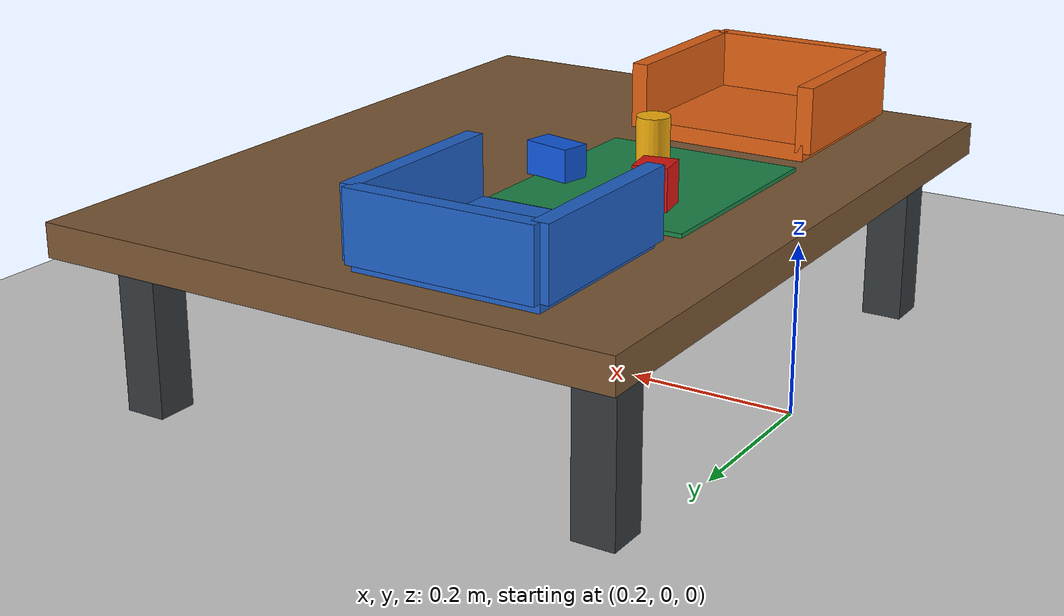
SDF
<?xml version="1.0" ?>
<sdf version="1.6">
  <world name="pick_and_place">
    <gravity>0 0 -9.80665</gravity>

    <physics name="ode_physics" type="ode">
      <max_step_size>0.001</max_step_size>
      <real_time_factor>1.0</real_time_factor>
      <real_time_update_rate>1000</real_time_update_rate>
      <ode>
        <solver>
          <type>quick</type>
          <iters>100</iters>
          <sor>1.3</sor>
        </solver>
        <constraints>
          <cfm>0.0</cfm>
          <erp>0.2</erp>
          <contact_max_correcting_vel>0.1</contact_max_correcting_vel>
          <contact_surface_layer>0.001</contact_surface_layer>
        </constraints>
      </ode>
    </physics>

    <include>
      <uri>model://ground_plane</uri>
    </include>
    <include>
      <uri>model://sun</uri>
    </include>

    <scene>
      <ambient>0.45 0.45 0.45 1</ambient>
      <background>0.72 0.78 0.82 1</background>
      <shadows>true</shadows>
    </scene>

    <gui fullscreen="0">
      <camera name="overview_camera">
        <pose>1.45 -1.35 1.05 0 0.45 2.35</pose>
        <view_controller>orbit</view_controller>
      </camera>
    </gui>

    <model name="workbench">
      <static>true</static>
      <link name="bench">
        <collision name="top_collision">
          <pose>0.52 0 0.215 0 0 0</pose>
          <geometry>
            <box><size>0.70 0.90 0.04</size></box>
          </geometry>
          <surface>
            <friction>
              <ode><mu>1.4</mu><mu2>1.4</mu2></ode>
            </friction>
          </surface>
        </collision>
        <visual name="top_visual">
          <pose>0.52 0 0.215 0 0 0</pose>
          <geometry>
            <box><size>0.70 0.90 0.04</size></box>
          </geometry>
          <material>
            <ambient>0.25 0.19 0.12 1</ambient>
            <diffuse>0.48 0.34 0.20 1</diffuse>
          </material>
        </visual>

        <collision name="front_left_leg_collision">
          <pose>0.23 0.36 0.10 0 0 0</pose>
          <geometry><box><size>0.05 0.05 0.20</size></box></geometry>
        </collision>
        <visual name="front_left_leg_visual">
          <pose>0.23 0.36 0.10 0 0 0</pose>
          <geometry><box><size>0.05 0.05 0.20</size></box></geometry>
          <material><diffuse>0.20 0.22 0.24 1</diffuse></material>
        </visual>

        <collision name="front_right_leg_collision">
          <pose>0.23 -0.36 0.10 0 0 0</pose>
          <geometry><box><size>0.05 0.05 0.20</size></box></geometry>
        </collision>
        <visual name="front_right_leg_visual">
          <pose>0.23 -0.36 0.10 0 0 0</pose>
          <geometry><box><size>0.05 0.05 0.20</size></box></geometry>
          <material><diffuse>0.20 0.22 0.24 1</diffuse></material>
        </visual>

        <collision name="rear_left_leg_collision">
          <pose>0.81 0.36 0.10 0 0 0</pose>
          <geometry><box><size>0.05 0.05 0.20</size></box></geometry>
        </collision>
        <visual name="rear_left_leg_visual">
          <pose>0.81 0.36 0.10 0 0 0</pose>
          <geometry><box><size>0.05 0.05 0.20</size></box></geometry>
          <material><diffuse>0.20 0.22 0.24 1</diffuse></material>
        </visual>

        <collision name="rear_right_leg_collision">
          <pose>0.81 -0.36 0.10 0 0 0</pose>
          <geometry><box><size>0.05 0.05 0.20</size></box></geometry>
        </collision>
        <visual name="rear_right_leg_visual">
          <pose>0.81 -0.36 0.10 0 0 0</pose>
          <geometry><box><size>0.05 0.05 0.20</size></box></geometry>
          <material><diffuse>0.20 0.22 0.24 1</diffuse></material>
        </visual>
      </link>
    </model>

    <model name="pickup_zone">
      <static>true</static>
      <link name="marker">
        <visual name="marker_visual">
          <pose>0.39 0 0.2375 0 0 0</pose>
          <geometry><box><size>0.24 0.28 0.005</size></box></geometry>
          <material>
            <ambient>0.08 0.30 0.18 1</ambient>
            <diffuse>0.10 0.52 0.28 1</diffuse>
          </material>
        </visual>
      </link>
    </model>

    <model name="place_tray">
      <static>true</static>
      <link name="tray">
        <collision name="base_collision">
          <pose>0.39 0.29 0.245 0 0 0</pose>
          <geometry><box><size>0.22 0.22 0.02</size></box></geometry>
        </collision>
        <visual name="base_visual">
          <pose>0.39 0.29 0.245 0 0 0</pose>
          <geometry><box><size>0.22 0.22 0.02</size></box></geometry>
          <material><diffuse>0.12 0.38 0.78 1</diffuse></material>
        </visual>

        <collision name="wall_x_min_collision">
          <pose>0.28 0.29 0.285 0 0 0</pose>
          <geometry><box><size>0.02 0.22 0.08</size></box></geometry>
        </collision>
        <visual name="wall_x_min_visual">
          <pose>0.28 0.29 0.285 0 0 0</pose>
          <geometry><box><size>0.02 0.22 0.08</size></box></geometry>
          <material><diffuse>0.12 0.38 0.78 1</diffuse></material>
        </visual>

        <collision name="wall_x_max_collision">
          <pose>0.50 0.29 0.285 0 0 0</pose>
          <geometry><box><size>0.02 0.22 0.08</size></box></geometry>
        </collision>
        <visual name="wall_x_max_visual">
          <pose>0.50 0.29 0.285 0 0 0</pose>
          <geometry><box><size>0.02 0.22 0.08</size></box></geometry>
          <material><diffuse>0.12 0.38 0.78 1</diffuse></material>
        </visual>

        <collision name="wall_y_max_collision">
          <pose>0.39 0.40 0.285 0 0 0</pose>
          <geometry><box><size>0.22 0.02 0.08</size></box></geometry>
        </collision>
        <visual name="wall_y_max_visual">
          <pose>0.39 0.40 0.285 0 0 0</pose>
          <geometry><box><size>0.22 0.02 0.08</size></box></geometry>
          <material><diffuse>0.12 0.38 0.78 1</diffuse></material>
        </visual>
      </link>
    </model>

    <model name="reject_tray">
      <static>true</static>
      <link name="tray">
        <collision name="base_collision">
          <pose>0.39 -0.29 0.245 0 0 0</pose>
          <geometry><box><size>0.22 0.22 0.02</size></box></geometry>
        </collision>
        <visual name="base_visual">
          <pose>0.39 -0.29 0.245 0 0 0</pose>
          <geometry><box><size>0.22 0.22 0.02</size></box></geometry>
          <material><diffuse>0.88 0.38 0.08 1</diffuse></material>
        </visual>

        <collision name="wall_x_min_collision">
          <pose>0.28 -0.29 0.285 0 0 0</pose>
          <geometry><box><size>0.02 0.22 0.08</size></box></geometry>
        </collision>
        <visual name="wall_x_min_visual">
          <pose>0.28 -0.29 0.285 0 0 0</pose>
          <geometry><box><size>0.02 0.22 0.08</size></box></geometry>
          <material><diffuse>0.88 0.38 0.08 1</diffuse></material>
        </visual>

        <collision name="wall_x_max_collision">
          <pose>0.50 -0.29 0.285 0 0 0</pose>
          <geometry><box><size>0.02 0.22 0.08</size></box></geometry>
        </collision>
        <visual name="wall_x_max_visual">
          <pose>0.50 -0.29 0.285 0 0 0</pose>
          <geometry><box><size>0.02 0.22 0.08</size></box></geometry>
          <material><diffuse>0.88 0.38 0.08 1</diffuse></material>
        </visual>

        <collision name="wall_y_min_collision">
          <pose>0.39 -0.40 0.285 0 0 0</pose>
          <geometry><box><size>0.22 0.02 0.08</size></box></geometry>
        </collision>
        <visual name="wall_y_min_visual">
          <pose>0.39 -0.40 0.285 0 0 0</pose>
          <geometry><box><size>0.22 0.02 0.08</size></box></geometry>
          <material><diffuse>0.88 0.38 0.08 1</diffuse></material>
        </visual>
      </link>
    </model>

    <model name="pick_cube_red">
      <pose>0.34 0.07 0.264 0 0 0.18</pose>
      <link name="body">
        <inertial>
          <mass>0.08</mass>
          <inertia>
            <ixx>0.0000213</ixx><ixy>0</ixy><ixz>0</ixz>
            <iyy>0.0000213</iyy><iyz>0</iyz><izz>0.0000213</izz>
          </inertia>
        </inertial>
        <collision name="collision">
          <geometry><box><size>0.04 0.04 0.05</size></box></geometry>
          <surface>
            <friction><ode><mu>1.5</mu><mu2>1.5</mu2></ode></friction>
            <contact><ode><kp>1000000</kp><kd>10</kd><max_vel>0.1</max_vel><min_depth>0.001</min_depth></ode></contact>
          </surface>
        </collision>
        <visual name="visual">
          <geometry><box><size>0.04 0.04 0.05</size></box></geometry>
          <material><ambient>0.50 0.04 0.04 1</ambient><diffuse>0.85 0.08 0.06 1</diffuse></material>
        </visual>
        <velocity_decay><linear>0.05</linear><angular>0.05</angular></velocity_decay>
      </link>
    </model>

    <model name="pick_cylinder_yellow">
      <pose>0.42 -0.07 0.267 0 0 0</pose>
      <link name="body">
        <inertial>
          <mass>0.06</mass>
          <inertia>
            <ixx>0.0000245</ixx><ixy>0</ixy><ixz>0</ixz>
            <iyy>0.0000245</iyy><iyz>0</iyz><izz>0.0000120</izz>
          </inertia>
        </inertial>
        <collision name="collision">
          <geometry><cylinder><radius>0.02</radius><length>0.06</length></cylinder></geometry>
          <surface>
            <friction><ode><mu>1.5</mu><mu2>1.5</mu2></ode></friction>
            <contact><ode><kp>1000000</kp><kd>10</kd><max_vel>0.1</max_vel><min_depth>0.001</min_depth></ode></contact>
          </surface>
        </collision>
        <visual name="visual">
          <geometry><cylinder><radius>0.02</radius><length>0.06</length></cylinder></geometry>
          <material><ambient>0.55 0.38 0.02 1</ambient><diffuse>0.95 0.68 0.05 1</diffuse></material>
        </visual>
        <velocity_decay><linear>0.05</linear><angular>0.05</angular></velocity_decay>
      </link>
    </model>

    <model name="pick_block_blue">
      <pose>0.49 0.03 0.259 0 0 -0.22</pose>
      <link name="body">
        <inertial>
          <mass>0.07</mass>
          <inertia>
            <ixx>0.0000120</ixx><ixy>0</ixy><ixz>0</ixz>
            <iyy>0.0000280</iyy><iyz>0</iyz><izz>0.0000310</izz>
          </inertia>
        </inertial>
        <collision name="collision">
          <geometry><box><size>0.06 0.035 0.04</size></box></geometry>
          <surface>
            <friction><ode><mu>1.5</mu><mu2>1.5</mu2></ode></friction>
            <contact><ode><kp>1000000</kp><kd>10</kd><max_vel>0.1</max_vel><min_depth>0.001</min_depth></ode></contact>
          </surface>
        </collision>
        <visual name="visual">
          <geometry><box><size>0.06 0.035 0.04</size></box></geometry>
          <material><ambient>0.03 0.18 0.48 1</ambient><diffuse>0.06 0.34 0.86 1</diffuse></material>
        </visual>
        <velocity_decay><linear>0.05</linear><angular>0.05</angular></velocity_decay>
      </link>
    </model>
  </world>
</sdf>
